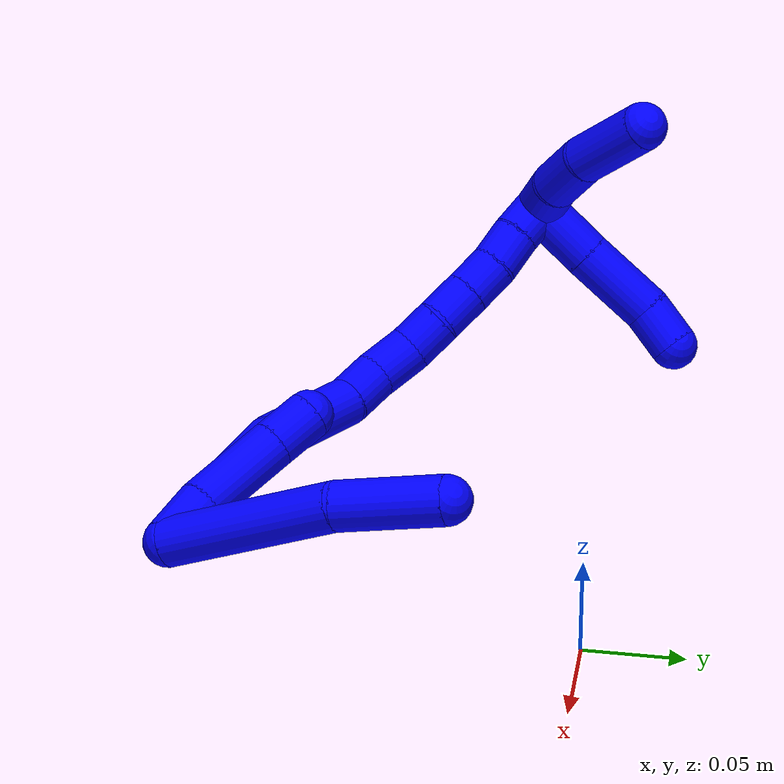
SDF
<sdf version="1.7">
 <world name="default">
  <model name="1">
   <static>0</static>
   <link name="1">
    <collision name="collision-cylinder-e_1_2_8">
     <pose>-0.02115 0.024298 0.03427 -0.616756 -0.466416 0.151038</pose>
     <geometry><cylinder><radius>0.0125</radius><length>0.094067</length></cylinder></geometry>
     <surface>
      <friction><ode><mu>1.16</mu><mu2>1.16</mu2><slip1>0</slip1><slip2>0</slip2></ode></friction>
      <contact><ode><kp>1e+06</kp><kd>1</kd><max_vel>0</max_vel><min_depth>0.001</min_depth></ode></contact>
     </surface>
    </collision>
    <visual name="visual-cylinder-e_1_2_8">
     <pose>-0.02115 0.024298 0.03427 -0.616756 -0.466416 0.151038</pose>
     <geometry><cylinder><radius>0.0125</radius><length>0.094067</length></cylinder></geometry>
     <material><ambient>0 0 1 1</ambient></material>
    </visual>
    <collision name="collision-cylinder-e_2_8_6">
     <pose>-0.05593 0.066986 0.084608 -0.852674 -0.509037 0.235237</pose>
     <geometry><cylinder><radius>0.0125</radius><length>0.055933</length></cylinder></geometry>
     <surface>
      <friction><ode><mu>1.16</mu><mu2>1.16</mu2><slip1>0</slip1><slip2>0</slip2></ode></friction>
      <contact><ode><kp>1e+06</kp><kd>1</kd><max_vel>0</max_vel><min_depth>0.001</min_depth></ode></contact>
     </surface>
    </collision>
    <visual name="visual-cylinder-e_2_8_6">
     <pose>-0.05593 0.066986 0.084608 -0.852674 -0.509037 0.235237</pose>
     <geometry><cylinder><radius>0.0125</radius><length>0.055933</length></cylinder></geometry>
     <material><ambient>0 0 1 1</ambient></material>
    </visual>
    <collision name="collision-cylinder-e_1_2_9">
     <pose>-0.013656 -0.001371 -0.000385 1.8443 -1.46691 -1.74285</pose>
     <geometry><cylinder><radius>0.0125</radius><length>0.02746</length></cylinder></geometry>
     <surface>
      <friction><ode><mu>1.16</mu><mu2>1.16</mu2><slip1>0</slip1><slip2>0</slip2></ode></friction>
      <contact><ode><kp>1e+06</kp><kd>1</kd><max_vel>0</max_vel><min_depth>0.001</min_depth></ode></contact>
     </surface>
    </collision>
    <visual name="visual-cylinder-e_1_2_9">
     <pose>-0.013656 -0.001371 -0.000385 1.8443 -1.46691 -1.74285</pose>
     <geometry><cylinder><radius>0.0125</radius><length>0.02746</length></cylinder></geometry>
     <material><ambient>0 0 1 1</ambient></material>
    </visual>
    <collision name="collision-cylinder-e_2_9_10">
     <pose>-0.05124 -0.001403 0.001635 -0.508058 -1.45631 0.454975</pose>
     <geometry><cylinder><radius>0.0125</radius><length>0.048172</length></cylinder></geometry>
     <surface>
      <friction><ode><mu>1.16</mu><mu2>1.16</mu2><slip1>0</slip1><slip2>0</slip2></ode></friction>
      <contact><ode><kp>1e+06</kp><kd>1</kd><max_vel>0</max_vel><min_depth>0.001</min_depth></ode></contact>
     </surface>
    </collision>
    <visual name="visual-cylinder-e_2_9_10">
     <pose>-0.05124 -0.001403 0.001635 -0.508058 -1.45631 0.454975</pose>
     <geometry><cylinder><radius>0.0125</radius><length>0.048172</length></cylinder></geometry>
     <material><ambient>0 0 1 1</ambient></material>
    </visual>
    <collision name="collision-cylinder-e_3_10_5">
     <pose>-0.087231 0.000769 0.005538 -0.507537 -1.42952 0.442785</pose>
     <geometry><cylinder><radius>0.0125</radius><length>0.024368</length></cylinder></geometry>
     <surface>
      <friction><ode><mu>1.16</mu><mu2>1.16</mu2><slip1>0</slip1><slip2>0</slip2></ode></friction>
      <contact><ode><kp>1e+06</kp><kd>1</kd><max_vel>0</max_vel><min_depth>0.001</min_depth></ode></contact>
     </surface>
    </collision>
    <visual name="visual-cylinder-e_3_10_5">
     <pose>-0.087231 0.000769 0.005538 -0.507537 -1.42952 0.442785</pose>
     <geometry><cylinder><radius>0.0125</radius><length>0.024368</length></cylinder></geometry>
     <material><ambient>0 0 1 1</ambient></material>
    </visual>
    <collision name="collision-cylinder-e_1_2_11">
     <pose>-0.046538 -0.003151 -0.014506 2.9277 -1.26203 -2.84982</pose>
     <geometry><cylinder><radius>0.0125</radius><length>0.097696</length></cylinder></geometry>
     <surface>
      <friction><ode><mu>1.16</mu><mu2>1.16</mu2><slip1>0</slip1><slip2>0</slip2></ode></friction>
      <contact><ode><kp>1e+06</kp><kd>1</kd><max_vel>0</max_vel><min_depth>0.001</min_depth></ode></contact>
     </surface>
    </collision>
    <visual name="visual-cylinder-e_1_2_11">
     <pose>-0.046538 -0.003151 -0.014506 2.9277 -1.26203 -2.84982</pose>
     <geometry><cylinder><radius>0.0125</radius><length>0.097696</length></cylinder></geometry>
     <material><ambient>0 0 1 1</ambient></material>
    </visual>
    <collision name="collision-cylinder-e_2_11_12">
     <pose>-0.118808 -0.000694 -0.034157 -2.31323 -1.28325 2.07782</pose>
     <geometry><cylinder><radius>0.0125</radius><length>0.053668</length></cylinder></geometry>
     <surface>
      <friction><ode><mu>1.16</mu><mu2>1.16</mu2><slip1>0</slip1><slip2>0</slip2></ode></friction>
      <contact><ode><kp>1e+06</kp><kd>1</kd><max_vel>0</max_vel><min_depth>0.001</min_depth></ode></contact>
     </surface>
    </collision>
    <visual name="visual-cylinder-e_2_11_12">
     <pose>-0.118808 -0.000694 -0.034157 -2.31323 -1.28325 2.07782</pose>
     <geometry><cylinder><radius>0.0125</radius><length>0.053668</length></cylinder></geometry>
     <material><ambient>0 0 1 1</ambient></material>
    </visual>
    <collision name="collision-cylinder-e_3_12_13">
     <pose>-0.155698 0.004797 -0.040125 3.00155 -1.49652 -2.99078</pose>
     <geometry><cylinder><radius>0.0125</radius><length>0.022377</length></cylinder></geometry>
     <surface>
      <friction><ode><mu>1.16</mu><mu2>1.16</mu2><slip1>0</slip1><slip2>0</slip2></ode></friction>
      <contact><ode><kp>1e+06</kp><kd>1</kd><max_vel>0</max_vel><min_depth>0.001</min_depth></ode></contact>
     </surface>
    </collision>
    <visual name="visual-cylinder-e_3_12_13">
     <pose>-0.155698 0.004797 -0.040125 3.00155 -1.49652 -2.99078</pose>
     <geometry><cylinder><radius>0.0125</radius><length>0.022377</length></cylinder></geometry>
     <material><ambient>0 0 1 1</ambient></material>
    </visual>
    <collision name="collision-cylinder-e_4_13_14">
     <pose>-0.178625 0.005947 -0.038751 -0.522915 -1.35865 0.425625</pose>
     <geometry><cylinder><radius>0.0125</radius><length>0.024077</length></cylinder></geometry>
     <surface>
      <friction><ode><mu>1.16</mu><mu2>1.16</mu2><slip1>0</slip1><slip2>0</slip2></ode></friction>
      <contact><ode><kp>1e+06</kp><kd>1</kd><max_vel>0</max_vel><min_depth>0.001</min_depth></ode></contact>
     </surface>
    </collision>
    <visual name="visual-cylinder-e_4_13_14">
     <pose>-0.178625 0.005947 -0.038751 -0.522915 -1.35865 0.425625</pose>
     <geometry><cylinder><radius>0.0125</radius><length>0.024077</length></cylinder></geometry>
     <material><ambient>0 0 1 1</ambient></material>
    </visual>
    <collision name="collision-cylinder-e_5_14_15">
     <pose>-0.199687 0.007415 -0.032357 -0.048131 -1.14611 0.031062</pose>
     <geometry><cylinder><radius>0.0125</radius><length>0.020399</length></cylinder></geometry>
     <surface>
      <friction><ode><mu>1.16</mu><mu2>1.16</mu2><slip1>0</slip1><slip2>0</slip2></ode></friction>
      <contact><ode><kp>1e+06</kp><kd>1</kd><max_vel>0</max_vel><min_depth>0.001</min_depth></ode></contact>
     </surface>
    </collision>
    <visual name="visual-cylinder-e_5_14_15">
     <pose>-0.199687 0.007415 -0.032357 -0.048131 -1.14611 0.031062</pose>
     <geometry><cylinder><radius>0.0125</radius><length>0.020399</length></cylinder></geometry>
     <material><ambient>0 0 1 1</ambient></material>
    </visual>
    <collision name="collision-cylinder-e_6_15_16">
     <pose>-0.219197 0.007587 -0.025391 0.011136 -1.30616 -0.00852</pose>
     <geometry><cylinder><radius>0.0125</radius><length>0.021169</length></cylinder></geometry>
     <surface>
      <friction><ode><mu>1.16</mu><mu2>1.16</mu2><slip1>0</slip1><slip2>0</slip2></ode></friction>
      <contact><ode><kp>1e+06</kp><kd>1</kd><max_vel>0</max_vel><min_depth>0.001</min_depth></ode></contact>
     </surface>
    </collision>
    <visual name="visual-cylinder-e_6_15_16">
     <pose>-0.219197 0.007587 -0.025391 0.011136 -1.30616 -0.00852</pose>
     <geometry><cylinder><radius>0.0125</radius><length>0.021169</length></cylinder></geometry>
     <material><ambient>0 0 1 1</ambient></material>
    </visual>
    <collision name="collision-cylinder-e_7_16_17">
     <pose>-0.239279 0.007384 -0.020008 0.0658 -1.31119 -0.050613</pose>
     <geometry><cylinder><radius>0.0125</radius><length>0.020415</length></cylinder></geometry>
     <surface>
      <friction><ode><mu>1.16</mu><mu2>1.16</mu2><slip1>0</slip1><slip2>0</slip2></ode></friction>
      <contact><ode><kp>1e+06</kp><kd>1</kd><max_vel>0</max_vel><min_depth>0.001</min_depth></ode></contact>
     </surface>
    </collision>
    <visual name="visual-cylinder-e_7_16_17">
     <pose>-0.239279 0.007384 -0.020008 0.0658 -1.31119 -0.050613</pose>
     <geometry><cylinder><radius>0.0125</radius><length>0.020415</length></cylinder></geometry>
     <material><ambient>0 0 1 1</ambient></material>
    </visual>
    <collision name="collision-cylinder-e_8_17_18">
     <pose>-0.258773 0.005521 -0.015037 0.622413 -1.27827 -0.469307</pose>
     <geometry><cylinder><radius>0.0125</radius><length>0.020112</length></cylinder></geometry>
     <surface>
      <friction><ode><mu>1.16</mu><mu2>1.16</mu2><slip1>0</slip1><slip2>0</slip2></ode></friction>
      <contact><ode><kp>1e+06</kp><kd>1</kd><max_vel>0</max_vel><min_depth>0.001</min_depth></ode></contact>
     </surface>
    </collision>
    <visual name="visual-cylinder-e_8_17_18">
     <pose>-0.258773 0.005521 -0.015037 0.622413 -1.27827 -0.469307</pose>
     <geometry><cylinder><radius>0.0125</radius><length>0.020112</length></cylinder></geometry>
     <material><ambient>0 0 1 1</ambient></material>
    </visual>
    <collision name="collision-cylinder-e_9_18_1">
     <pose>-0.278207 0.002979 -0.010683 0.402589 -1.35282 -0.324728</pose>
     <geometry><cylinder><radius>0.0125</radius><length>0.020085</length></cylinder></geometry>
     <surface>
      <friction><ode><mu>1.16</mu><mu2>1.16</mu2><slip1>0</slip1><slip2>0</slip2></ode></friction>
      <contact><ode><kp>1e+06</kp><kd>1</kd><max_vel>0</max_vel><min_depth>0.001</min_depth></ode></contact>
     </surface>
    </collision>
    <visual name="visual-cylinder-e_9_18_1">
     <pose>-0.278207 0.002979 -0.010683 0.402589 -1.35282 -0.324728</pose>
     <geometry><cylinder><radius>0.0125</radius><length>0.020085</length></cylinder></geometry>
     <material><ambient>0 0 1 1</ambient></material>
    </visual>
    <collision name="collision-cylinder-e_1_1_19">
     <pose>-0.289235 0.019149 -0.010914 -1.701 -0.071151 0.081065</pose>
     <geometry><cylinder><radius>0.0125</radius><length>0.034418</length></cylinder></geometry>
     <surface>
      <friction><ode><mu>1.16</mu><mu2>1.16</mu2><slip1>0</slip1><slip2>0</slip2></ode></friction>
      <contact><ode><kp>1e+06</kp><kd>1</kd><max_vel>0</max_vel><min_depth>0.001</min_depth></ode></contact>
     </surface>
    </collision>
    <visual name="visual-cylinder-e_1_1_19">
     <pose>-0.289235 0.019149 -0.010914 -1.701 -0.071151 0.081065</pose>
     <geometry><cylinder><radius>0.0125</radius><length>0.034418</length></cylinder></geometry>
     <material><ambient>0 0 1 1</ambient></material>
    </visual>
    <collision name="collision-cylinder-e_2_19_20">
     <pose>-0.292683 0.057139 -0.015422 -1.67906 -0.105052 0.117063</pose>
     <geometry><cylinder><radius>0.0125</radius><length>0.042421</length></cylinder></geometry>
     <surface>
      <friction><ode><mu>1.16</mu><mu2>1.16</mu2><slip1>0</slip1><slip2>0</slip2></ode></friction>
      <contact><ode><kp>1e+06</kp><kd>1</kd><max_vel>0</max_vel><min_depth>0.001</min_depth></ode></contact>
     </surface>
    </collision>
    <visual name="visual-cylinder-e_2_19_20">
     <pose>-0.292683 0.057139 -0.015422 -1.67906 -0.105052 0.117063</pose>
     <geometry><cylinder><radius>0.0125</radius><length>0.042421</length></cylinder></geometry>
     <material><ambient>0 0 1 1</ambient></material>
    </visual>
    <collision name="collision-cylinder-e_3_20_4">
     <pose>-0.293217 0.089534 -0.018552 -1.64513 0.146434 -0.1577</pose>
     <geometry><cylinder><radius>0.0125</radius><length>0.023161</length></cylinder></geometry>
     <surface>
      <friction><ode><mu>1.16</mu><mu2>1.16</mu2><slip1>0</slip1><slip2>0</slip2></ode></friction>
      <contact><ode><kp>1e+06</kp><kd>1</kd><max_vel>0</max_vel><min_depth>0.001</min_depth></ode></contact>
     </surface>
    </collision>
    <visual name="visual-cylinder-e_3_20_4">
     <pose>-0.293217 0.089534 -0.018552 -1.64513 0.146434 -0.1577</pose>
     <geometry><cylinder><radius>0.0125</radius><length>0.023161</length></cylinder></geometry>
     <material><ambient>0 0 1 1</ambient></material>
    </visual>
    <collision name="collision-cylinder-e_1_1_21">
     <pose>-0.288145 0.00201 0.004281 0.009153 -0.010241 -4.7e-05</pose>
     <geometry><cylinder><radius>0.0125</radius><length>0.025934</length></cylinder></geometry>
     <surface>
      <friction><ode><mu>1.16</mu><mu2>1.16</mu2><slip1>0</slip1><slip2>0</slip2></ode></friction>
      <contact><ode><kp>1e+06</kp><kd>1</kd><max_vel>0</max_vel><min_depth>0.001</min_depth></ode></contact>
     </surface>
    </collision>
    <visual name="visual-cylinder-e_1_1_21">
     <pose>-0.288145 0.00201 0.004281 0.009153 -0.010241 -4.7e-05</pose>
     <geometry><cylinder><radius>0.0125</radius><length>0.025934</length></cylinder></geometry>
     <material><ambient>0 0 1 1</ambient></material>
    </visual>
    <collision name="collision-cylinder-e_2_21_22">
     <pose>-0.290534 0.003548 0.031969 -0.112093 -0.151146 0.008496</pose>
     <geometry><cylinder><radius>0.0125</radius><length>0.029972</length></cylinder></geometry>
     <surface>
      <friction><ode><mu>1.16</mu><mu2>1.16</mu2><slip1>0</slip1><slip2>0</slip2></ode></friction>
      <contact><ode><kp>1e+06</kp><kd>1</kd><max_vel>0</max_vel><min_depth>0.001</min_depth></ode></contact>
     </surface>
    </collision>
    <visual name="visual-cylinder-e_2_21_22">
     <pose>-0.290534 0.003548 0.031969 -0.112093 -0.151146 0.008496</pose>
     <geometry><cylinder><radius>0.0125</radius><length>0.029972</length></cylinder></geometry>
     <material><ambient>0 0 1 1</ambient></material>
    </visual>
    <collision name="collision-cylinder-e_3_22_3">
     <pose>-0.298923 0.011338 0.066961 -0.293774 -0.281874 0.041976</pose>
     <geometry><cylinder><radius>0.0125</radius><length>0.044094</length></cylinder></geometry>
     <surface>
      <friction><ode><mu>1.16</mu><mu2>1.16</mu2><slip1>0</slip1><slip2>0</slip2></ode></friction>
      <contact><ode><kp>1e+06</kp><kd>1</kd><max_vel>0</max_vel><min_depth>0.001</min_depth></ode></contact>
     </surface>
    </collision>
    <visual name="visual-cylinder-e_3_22_3">
     <pose>-0.298923 0.011338 0.066961 -0.293774 -0.281874 0.041976</pose>
     <geometry><cylinder><radius>0.0125</radius><length>0.044094</length></cylinder></geometry>
     <material><ambient>0 0 1 1</ambient></material>
    </visual>
    <collision name="collision-sphere-3">
     <pose>-0.305056 0.01747 0.08723 0 -0 0</pose>
     <geometry><sphere><radius>0.0125</radius></sphere></geometry>
     <surface>
      <friction><ode><mu>1.16</mu><mu2>1.16</mu2><slip1>0</slip1><slip2>0</slip2></ode></friction>
      <contact><ode><kp>1e+06</kp><kd>1</kd><max_vel>0</max_vel><min_depth>0.001</min_depth></ode></contact>
     </surface>
    </collision>
    <visual name="visual-sphere-3">
     <pose>-0.305056 0.01747 0.08723 0 -0 0</pose>
     <geometry><sphere><radius>0.0125</radius></sphere></geometry>
     <material><ambient>0 0 1 1</ambient></material>
    </visual>
    <collision name="collision-sphere-22">
     <pose>-0.292791 0.005205 0.046691 0 -0 0</pose>
     <geometry><sphere><radius>0.0125</radius></sphere></geometry>
     <surface>
      <friction><ode><mu>1.16</mu><mu2>1.16</mu2><slip1>0</slip1><slip2>0</slip2></ode></friction>
      <contact><ode><kp>1e+06</kp><kd>1</kd><max_vel>0</max_vel><min_depth>0.001</min_depth></ode></contact>
     </surface>
    </collision>
    <visual name="visual-sphere-22">
     <pose>-0.292791 0.005205 0.046691 0 -0 0</pose>
     <geometry><sphere><radius>0.0125</radius></sphere></geometry>
     <material><ambient>0 0 1 1</ambient></material>
    </visual>
    <collision name="collision-sphere-21">
     <pose>-0.288278 0.001891 0.017246 0 -0 0</pose>
     <geometry><sphere><radius>0.0125</radius></sphere></geometry>
     <surface>
      <friction><ode><mu>1.16</mu><mu2>1.16</mu2><slip1>0</slip1><slip2>0</slip2></ode></friction>
      <contact><ode><kp>1e+06</kp><kd>1</kd><max_vel>0</max_vel><min_depth>0.001</min_depth></ode></contact>
     </surface>
    </collision>
    <visual name="visual-sphere-21">
     <pose>-0.288278 0.001891 0.017246 0 -0 0</pose>
     <geometry><sphere><radius>0.0125</radius></sphere></geometry>
     <material><ambient>0 0 1 1</ambient></material>
    </visual>
    <collision name="collision-sphere-4">
     <pose>-0.291528 0.100959 -0.019403 0 -0 0</pose>
     <geometry><sphere><radius>0.0125</radius></sphere></geometry>
     <surface>
      <friction><ode><mu>1.16</mu><mu2>1.16</mu2><slip1>0</slip1><slip2>0</slip2></ode></friction>
      <contact><ode><kp>1e+06</kp><kd>1</kd><max_vel>0</max_vel><min_depth>0.001</min_depth></ode></contact>
     </surface>
    </collision>
    <visual name="visual-sphere-4">
     <pose>-0.291528 0.100959 -0.019403 0 -0 0</pose>
     <geometry><sphere><radius>0.0125</radius></sphere></geometry>
     <material><ambient>0 0 1 1</ambient></material>
    </visual>
    <collision name="collision-sphere-20">
     <pose>-0.294907 0.078109 -0.017701 0 -0 0</pose>
     <geometry><sphere><radius>0.0125</radius></sphere></geometry>
     <surface>
      <friction><ode><mu>1.16</mu><mu2>1.16</mu2><slip1>0</slip1><slip2>0</slip2></ode></friction>
      <contact><ode><kp>1e+06</kp><kd>1</kd><max_vel>0</max_vel><min_depth>0.001</min_depth></ode></contact>
     </surface>
    </collision>
    <visual name="visual-sphere-20">
     <pose>-0.294907 0.078109 -0.017701 0 -0 0</pose>
     <geometry><sphere><radius>0.0125</radius></sphere></geometry>
     <material><ambient>0 0 1 1</ambient></material>
    </visual>
    <collision name="collision-sphere-5">
     <pose>-0.099294 0.001603 0.007037 0 -0 0</pose>
     <geometry><sphere><radius>0.0125</radius></sphere></geometry>
     <surface>
      <friction><ode><mu>1.16</mu><mu2>1.16</mu2><slip1>0</slip1><slip2>0</slip2></ode></friction>
      <contact><ode><kp>1e+06</kp><kd>1</kd><max_vel>0</max_vel><min_depth>0.001</min_depth></ode></contact>
     </surface>
    </collision>
    <visual name="visual-sphere-5">
     <pose>-0.099294 0.001603 0.007037 0 -0 0</pose>
     <geometry><sphere><radius>0.0125</radius></sphere></geometry>
     <material><ambient>0 0 1 1</ambient></material>
    </visual>
    <collision name="collision-sphere-10">
     <pose>-0.075169 -6.5e-05 0.004039 0 -0 0</pose>
     <geometry><sphere><radius>0.0125</radius></sphere></geometry>
     <surface>
      <friction><ode><mu>1.16</mu><mu2>1.16</mu2><slip1>0</slip1><slip2>0</slip2></ode></friction>
      <contact><ode><kp>1e+06</kp><kd>1</kd><max_vel>0</max_vel><min_depth>0.001</min_depth></ode></contact>
     </surface>
    </collision>
    <visual name="visual-sphere-10">
     <pose>-0.075169 -6.5e-05 0.004039 0 -0 0</pose>
     <geometry><sphere><radius>0.0125</radius></sphere></geometry>
     <material><ambient>0 0 1 1</ambient></material>
    </visual>
    <collision name="collision-sphere-6">
     <pose>-0.069559 0.085376 0.100676 0 -0 0</pose>
     <geometry><sphere><radius>0.0125</radius></sphere></geometry>
     <surface>
      <friction><ode><mu>1.16</mu><mu2>1.16</mu2><slip1>0</slip1><slip2>0</slip2></ode></friction>
      <contact><ode><kp>1e+06</kp><kd>1</kd><max_vel>0</max_vel><min_depth>0.001</min_depth></ode></contact>
     </surface>
    </collision>
    <visual name="visual-sphere-6">
     <pose>-0.069559 0.085376 0.100676 0 -0 0</pose>
     <geometry><sphere><radius>0.0125</radius></sphere></geometry>
     <material><ambient>0 0 1 1</ambient></material>
    </visual>
    <collision name="collision-sphere-9">
     <pose>-0.027312 -0.002742 -0.000769 0 -0 0</pose>
     <geometry><sphere><radius>0.0125</radius></sphere></geometry>
     <surface>
      <friction><ode><mu>1.16</mu><mu2>1.16</mu2><slip1>0</slip1><slip2>0</slip2></ode></friction>
      <contact><ode><kp>1e+06</kp><kd>1</kd><max_vel>0</max_vel><min_depth>0.001</min_depth></ode></contact>
     </surface>
    </collision>
    <visual name="visual-sphere-9">
     <pose>-0.027312 -0.002742 -0.000769 0 -0 0</pose>
     <geometry><sphere><radius>0.0125</radius></sphere></geometry>
     <material><ambient>0 0 1 1</ambient></material>
    </visual>
    <collision name="collision-sphere-2">
     <geometry><sphere><radius>0.0125</radius></sphere></geometry>
     <surface>
      <friction><ode><mu>1.16</mu><mu2>1.16</mu2><slip1>0</slip1><slip2>0</slip2></ode></friction>
      <contact><ode><kp>1e+06</kp><kd>1</kd><max_vel>0</max_vel><min_depth>0.001</min_depth></ode></contact>
     </surface>
    </collision>
    <visual name="visual-sphere-2">
     <geometry><sphere><radius>0.0125</radius></sphere></geometry>
     <material><ambient>0 0 1 1</ambient></material>
    </visual>
    <collision name="collision-sphere-19">
     <pose>-0.290459 0.036169 -0.013142 0 -0 0</pose>
     <geometry><sphere><radius>0.0125</radius></sphere></geometry>
     <surface>
      <friction><ode><mu>1.16</mu><mu2>1.16</mu2><slip1>0</slip1><slip2>0</slip2></ode></friction>
      <contact><ode><kp>1e+06</kp><kd>1</kd><max_vel>0</max_vel><min_depth>0.001</min_depth></ode></contact>
     </surface>
    </collision>
    <visual name="visual-sphere-19">
     <pose>-0.290459 0.036169 -0.013142 0 -0 0</pose>
     <geometry><sphere><radius>0.0125</radius></sphere></geometry>
     <material><ambient>0 0 1 1</ambient></material>
    </visual>
    <collision name="collision-sphere-8">
     <pose>-0.042301 0.048596 0.06854 0 -0 0</pose>
     <geometry><sphere><radius>0.0125</radius></sphere></geometry>
     <surface>
      <friction><ode><mu>1.16</mu><mu2>1.16</mu2><slip1>0</slip1><slip2>0</slip2></ode></friction>
      <contact><ode><kp>1e+06</kp><kd>1</kd><max_vel>0</max_vel><min_depth>0.001</min_depth></ode></contact>
     </surface>
    </collision>
    <visual name="visual-sphere-8">
     <pose>-0.042301 0.048596 0.06854 0 -0 0</pose>
     <geometry><sphere><radius>0.0125</radius></sphere></geometry>
     <material><ambient>0 0 1 1</ambient></material>
    </visual>
    <collision name="collision-sphere-11">
     <pose>-0.093076 -0.006302 -0.029012 0 -0 0</pose>
     <geometry><sphere><radius>0.0125</radius></sphere></geometry>
     <surface>
      <friction><ode><mu>1.16</mu><mu2>1.16</mu2><slip1>0</slip1><slip2>0</slip2></ode></friction>
      <contact><ode><kp>1e+06</kp><kd>1</kd><max_vel>0</max_vel><min_depth>0.001</min_depth></ode></contact>
     </surface>
    </collision>
    <visual name="visual-sphere-11">
     <pose>-0.093076 -0.006302 -0.029012 0 -0 0</pose>
     <geometry><sphere><radius>0.0125</radius></sphere></geometry>
     <material><ambient>0 0 1 1</ambient></material>
    </visual>
    <collision name="collision-sphere-12">
     <pose>-0.144541 0.004913 -0.039302 0 -0 0</pose>
     <geometry><sphere><radius>0.0125</radius></sphere></geometry>
     <surface>
      <friction><ode><mu>1.16</mu><mu2>1.16</mu2><slip1>0</slip1><slip2>0</slip2></ode></friction>
      <contact><ode><kp>1e+06</kp><kd>1</kd><max_vel>0</max_vel><min_depth>0.001</min_depth></ode></contact>
     </surface>
    </collision>
    <visual name="visual-sphere-12">
     <pose>-0.144541 0.004913 -0.039302 0 -0 0</pose>
     <geometry><sphere><radius>0.0125</radius></sphere></geometry>
     <material><ambient>0 0 1 1</ambient></material>
    </visual>
    <collision name="collision-sphere-13">
     <pose>-0.166856 0.004681 -0.040947 0 -0 0</pose>
     <geometry><sphere><radius>0.0125</radius></sphere></geometry>
     <surface>
      <friction><ode><mu>1.16</mu><mu2>1.16</mu2><slip1>0</slip1><slip2>0</slip2></ode></friction>
      <contact><ode><kp>1e+06</kp><kd>1</kd><max_vel>0</max_vel><min_depth>0.001</min_depth></ode></contact>
     </surface>
    </collision>
    <visual name="visual-sphere-13">
     <pose>-0.166856 0.004681 -0.040947 0 -0 0</pose>
     <geometry><sphere><radius>0.0125</radius></sphere></geometry>
     <material><ambient>0 0 1 1</ambient></material>
    </visual>
    <collision name="collision-sphere-14">
     <pose>-0.190394 0.007213 -0.036554 0 -0 0</pose>
     <geometry><sphere><radius>0.0125</radius></sphere></geometry>
     <surface>
      <friction><ode><mu>1.16</mu><mu2>1.16</mu2><slip1>0</slip1><slip2>0</slip2></ode></friction>
      <contact><ode><kp>1e+06</kp><kd>1</kd><max_vel>0</max_vel><min_depth>0.001</min_depth></ode></contact>
     </surface>
    </collision>
    <visual name="visual-sphere-14">
     <pose>-0.190394 0.007213 -0.036554 0 -0 0</pose>
     <geometry><sphere><radius>0.0125</radius></sphere></geometry>
     <material><ambient>0 0 1 1</ambient></material>
    </visual>
    <collision name="collision-sphere-15">
     <pose>-0.208981 0.007617 -0.028159 0 -0 0</pose>
     <geometry><sphere><radius>0.0125</radius></sphere></geometry>
     <surface>
      <friction><ode><mu>1.16</mu><mu2>1.16</mu2><slip1>0</slip1><slip2>0</slip2></ode></friction>
      <contact><ode><kp>1e+06</kp><kd>1</kd><max_vel>0</max_vel><min_depth>0.001</min_depth></ode></contact>
     </surface>
    </collision>
    <visual name="visual-sphere-15">
     <pose>-0.208981 0.007617 -0.028159 0 -0 0</pose>
     <geometry><sphere><radius>0.0125</radius></sphere></geometry>
     <material><ambient>0 0 1 1</ambient></material>
    </visual>
    <collision name="collision-sphere-16">
     <pose>-0.229413 0.007556 -0.022622 0 -0 0</pose>
     <geometry><sphere><radius>0.0125</radius></sphere></geometry>
     <surface>
      <friction><ode><mu>1.16</mu><mu2>1.16</mu2><slip1>0</slip1><slip2>0</slip2></ode></friction>
      <contact><ode><kp>1e+06</kp><kd>1</kd><max_vel>0</max_vel><min_depth>0.001</min_depth></ode></contact>
     </surface>
    </collision>
    <visual name="visual-sphere-16">
     <pose>-0.229413 0.007556 -0.022622 0 -0 0</pose>
     <geometry><sphere><radius>0.0125</radius></sphere></geometry>
     <material><ambient>0 0 1 1</ambient></material>
    </visual>
    <collision name="collision-sphere-17">
     <pose>-0.249145 0.007211 -0.017393 0 -0 0</pose>
     <geometry><sphere><radius>0.0125</radius></sphere></geometry>
     <surface>
      <friction><ode><mu>1.16</mu><mu2>1.16</mu2><slip1>0</slip1><slip2>0</slip2></ode></friction>
      <contact><ode><kp>1e+06</kp><kd>1</kd><max_vel>0</max_vel><min_depth>0.001</min_depth></ode></contact>
     </surface>
    </collision>
    <visual name="visual-sphere-17">
     <pose>-0.249145 0.007211 -0.017393 0 -0 0</pose>
     <geometry><sphere><radius>0.0125</radius></sphere></geometry>
     <material><ambient>0 0 1 1</ambient></material>
    </visual>
    <collision name="collision-sphere-18">
     <pose>-0.268402 0.00383 -0.012681 0 -0 0</pose>
     <geometry><sphere><radius>0.0125</radius></sphere></geometry>
     <surface>
      <friction><ode><mu>1.16</mu><mu2>1.16</mu2><slip1>0</slip1><slip2>0</slip2></ode></friction>
      <contact><ode><kp>1e+06</kp><kd>1</kd><max_vel>0</max_vel><min_depth>0.001</min_depth></ode></contact>
     </surface>
    </collision>
    <visual name="visual-sphere-18">
     <pose>-0.268402 0.00383 -0.012681 0 -0 0</pose>
     <geometry><sphere><radius>0.0125</radius></sphere></geometry>
     <material><ambient>0 0 1 1</ambient></material>
    </visual>
    <collision name="collision-sphere-1">
     <pose>-0.288012 0.002128 -0.008685 0 -0 0</pose>
     <geometry><sphere><radius>0.0125</radius></sphere></geometry>
     <surface>
      <friction><ode><mu>1.16</mu><mu2>1.16</mu2><slip1>0</slip1><slip2>0</slip2></ode></friction>
      <contact><ode><kp>1e+06</kp><kd>1</kd><max_vel>0</max_vel><min_depth>0.001</min_depth></ode></contact>
     </surface>
    </collision>
    <visual name="visual-sphere-1">
     <pose>-0.288012 0.002128 -0.008685 0 -0 0</pose>
     <geometry><sphere><radius>0.0125</radius></sphere></geometry>
     <material><ambient>0 0 1 1</ambient></material>
    </visual>
    <inertial>
     <pose>-0.148945 0.0164 0.00469 0 -0 0</pose>
     <mass>0.75</mass>
     <inertia><ixx>6e-05</ixx><ixy>0</ixy><ixz>0</ixz><iyy>0.000237</iyy><iyz>0</iyz><izz>0.000114</izz></inertia>
    </inertial>
   </link>
   <pose>-0.040365 -0.205832 0.012251 -0.593555 0.241349 -0.566266</pose>
  </model>
 </world>
</sdf>
